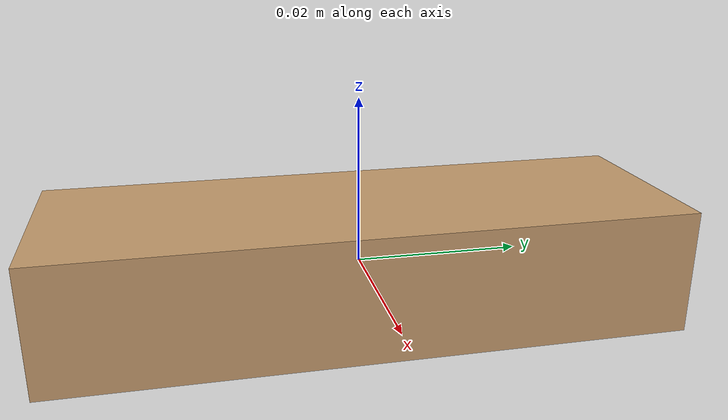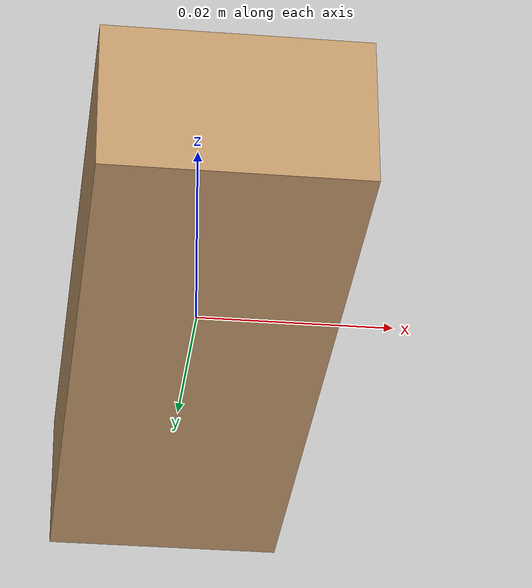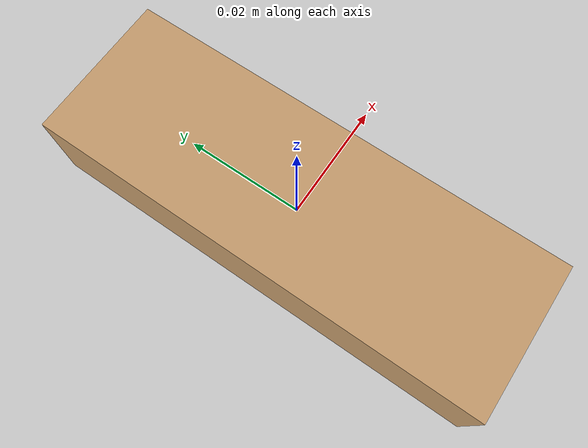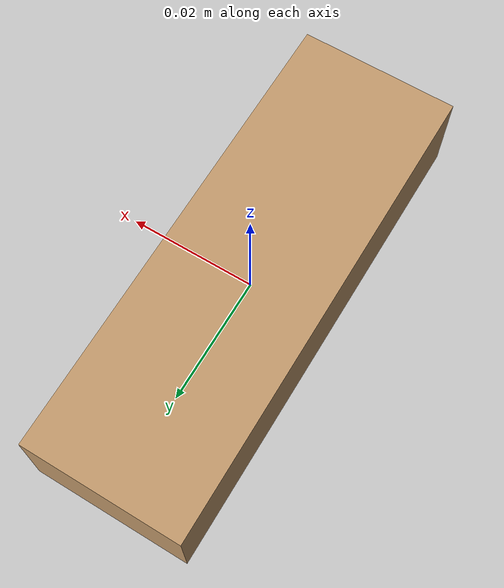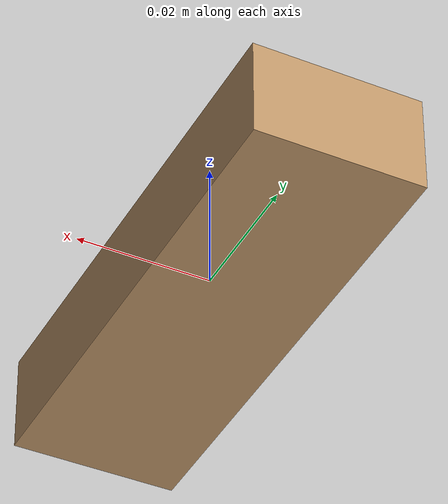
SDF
<?xml version="1.0" ?>
<sdf version="1.6">
    <model name="jenga_block">
        <static>false</static>
        <link name="link">
            <inertial>
                <mass>0.1</mass>
                <inertia>
                    <ixx>0.00026042</ixx>
                    <ixy>0</ixy>
                    <ixz>0</ixz>
                    <iyy>0.00010417</iyy>
                    <iyz>0</iyz>
                    <izz>0.00039063</izz>
                </inertia>
            </inertial>
            <collision name="collision">
                <geometry>
                    <box>
                        <size>0.025 0.075 0.015</size>
                    </box>
                </geometry>
                <surface>
                    <friction>
                        <ode>
                            <mu>99999.0</mu> <!-- Coefficient of friction -->
                            <mu2>99999.0</mu2> <!-- Coefficient of friction in the second direction -->
                        </ode>
                    </friction>
                </surface>
            </collision>
            <visual name="visual">
                <geometry>
                    <box>
                        <size>0.025 0.075 0.015</size>
                    </box>
                </geometry>
                <material>
                    <!-- Wood color approximation -->
                    <ambient>0.76 0.60 0.42 1</ambient>
                    <diffuse>0.76 0.60 0.42 1</diffuse>
                    <specular>0.1 0.1 0.1 1</specular>
                </material>
            </visual>
        </link>
    </model>
</sdf>
